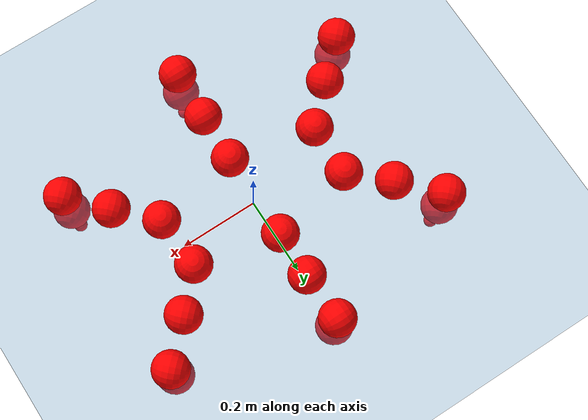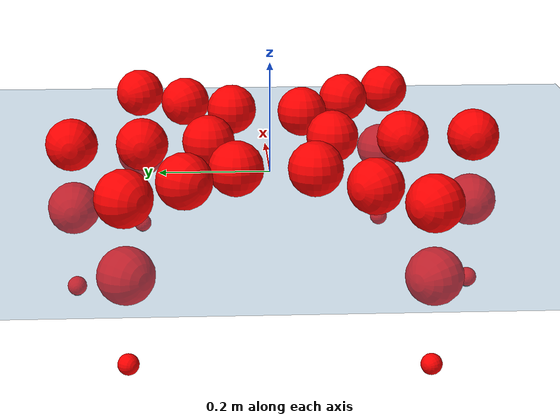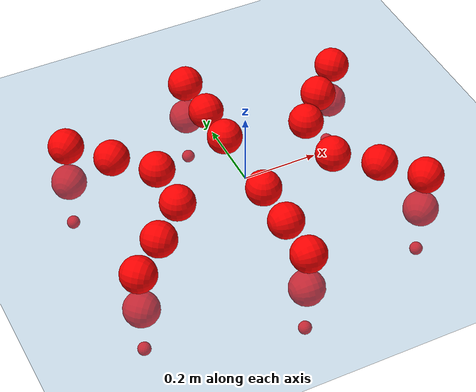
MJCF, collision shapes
<mujoco model="Golem">
  <compiler angle="radian" assetdir="assets" balanceinertia="true" inertiafromgeom="false"/>

  <option timestep="0.005" density="1.2" viscosity="2e-05"/>

  <size nkey="1"/>

  <visual>
    <quality shadowsize="8192"/>
    <map shadowclip="0.5"/>
  </visual>

  <default>
    <default class="/">
      <joint armature="0.01" damping="0.01" frictionloss="0.01"/>
      <geom contype="0" conaffinity="0" group="1" solref="-1000 -80"/>
      <site size="0.01 0.005 0.005" group="5"/>
      <general forcelimited="true" biastype="affine" gainprm="25" biasprm="0 -25 -0.5"/>
      <default class="visual">
        <geom type="mesh" group="2"/>
      </default>
      <default class="collision">
        <geom group="3"/>
      </default>
      <default class="foot">
        <geom size="0.01 0 0" condim="6" group="4" priority="1" solimp="0.015 1 0.01"/>
      </default>
      <default class="reward_collision_sphere">
        <geom group="5" rgba="1 0 0 1"/>
      </default>
    </default>
  </default>

  <asset>
    <texture type="skybox" colorspace="auto" name="//unnamed_texture_0" builtin="gradient" rgb1="0.95 0.95 0.95" rgb2="0.95 0.95 0.95" width="100" height="600"/>
    <texture type="2d" colorspace="auto" name="texplane" builtin="checker" rgb1="0.345 0.575 0.748" rgb2="0.345 0.575 0.748" markrgb="1 1 1" width="512" height="512"/>
    <material name="MatPlane" class="/" texture="texplane" texuniform="true" texrepeat="2 2" specular="0.9"/>
    <mesh name="body" class="/" file="body.stl" scale="0.001 0.001 0.001"/>
    <mesh name="coxa" class="/" file="coxa.stl" scale="0.001 0.001 0.001"/>
    <mesh name="femur" class="/" file="femur.stl" scale="0.001 0.001 0.001"/>
    <mesh name="tibia" class="/" file="tibia.stl" scale="0.001 0.001 0.001"/>
    <mesh name="tarsus" class="/" file="tarsus.stl" scale="0.001 0.001 0.001"/>
  </asset>

  <worldbody>
    <geom name="floor" class="/" size="100 100 0.125" type="plane" group="0" material="MatPlane"/>
    <light name="toplight_shadow" class="/" pos="0 0 5" dir="0.0990148 0.0990148 -0.990148" type="directional" ambient="0.04 0.04 0.04" diffuse="0.55 0.55 0.55" specular="0.12 0.12 0.12"/>
    <light name="toplight_fill" class="/" pos="0 0 5" dir="0.0990148 0.0990148 -0.990148" type="directional" castshadow="false" ambient="0.04 0.04 0.04" diffuse="0.3 0.3 0.3" specular="0.08 0.08 0.08"/>
    <body name="trunk" pos="-0.00419018 0.000167504 0.00065845" quat="1 0.000177486 -1.60819e-05 6.52851e-05">
      <inertial pos="0.00264229 0.00211157 -0.00476093" quat="0.999999 0.000677275 0.000833903 0.00123023" mass="6.26558" diaginertia="0.0545812 0.0229515 0.00830989"/>
      <joint name="//unnamed_joint_0" type="free"/>
      <geom name="//unnamed_geom_1" class="/" pos="0 0 0.0615308" quat="1 0 0 0" type="mesh" rgba="0.9 0.9 0.9 1" mesh="body"/>
      <site name="imu" class="/" pos="0.164232 -0.0148592 0.107859" size="0.0117409"/>
      <camera name="track" class="/" pos="0 -2.33489 0" quat="0.707107 0.707107 0 0" mode="trackcom"/>
      <camera name="ego_camera" class="/" pos="0.181141 0 0.0961419" quat="-0.5 -0.5 0.5 0.5"/>
      <body name="coxa_RR" pos="-0.246272 -0.0960619 0.0660046" quat="0.382777 -2.85125e-05 5.40117e-05 -0.923841">
        <inertial pos="0.00059179 0.00483823 -0.00145877" quat="0.999988 0.00212398 -0.00394208 0.0017861" mass="0.353691" diaginertia="0.0546833 0.0226321 0.00862591"/>
        <joint name="coxa_joint_RR" class="/" pos="0 0 0" axis="0.00255578 0.00535761 -0.999982" stiffness="0.0213192" range="-3.12625 3.12599" armature="0.0130477" damping="0" frictionloss="0.0115423"/>
        <geom name="//unnamed_geom_2" class="/" type="mesh" rgba="0.2 0.2 0.2 1" mesh="coxa"/>
        <geom name="//unnamed_geom_3" class="reward_collision_sphere" size="0.0469635" pos="-0.0418019 0 0"/>
        <body name="femur_RR" pos="0.086207 -0.000514017 -0.00491248" quat="0.500347 -0.499393 0.500189 0.500071">
          <inertial pos="-0.00114024 -0.00187653 -2.12874e-06" quat="0.999934 -0.0029734 -0.00865549 -0.00690428" mass="0.32176" diaginertia="0.052307 0.0221282 0.00756856"/>
          <joint name="femur_joint_RR" class="/" pos="0 0 0" axis="0.00651657 -0.0115234 -0.999912" stiffness="0.017623" range="-3.08219 3.15495" armature="0.0102801" damping="0" frictionloss="0.0103679"/>
          <geom name="//unnamed_geom_4" class="/" type="mesh" rgba="0.9 0.9 0.9 1" mesh="femur"/>
          <geom name="//unnamed_geom_5" class="reward_collision_sphere" size="0.0469635"/>
          <body name="tibia_RR" pos="0.00239652 -0.122252 -0.00493584" quat="-0.00159044 0.999997 0.00115121 -0.00127021">
            <inertial pos="0.00289576 -0.00248185 -0.000347628" quat="1 0.0002176 -0.000554591 -0.000739359" mass="0.316345" diaginertia="0.0512718 0.021004 0.0082199"/>
            <joint name="tibia_joint_RR" class="/" pos="0 0 0" axis="-0.00340235 -0.0134624 0.999904" range="-3.11123 3.13788" armature="0.0103351" damping="0.00454548" frictionloss="0.0118475"/>
            <geom name="//unnamed_geom_6" class="/" type="mesh" rgba="0.2 0.2 0.2 1" mesh="tibia"/>
            <geom name="//unnamed_geom_7" class="reward_collision_sphere" size="0.0469635"/>
            <body name="tarsus_RR" pos="0.120921 0.0018363 -0.00266557" quat="1 4.70993e-05 -0.00012487 -4.85034e-05">
              <inertial pos="0.0811629 0.000421401 0.00132003" quat="0.504576 0.489346 0.501986 0.503937" mass="0.31823" diaginertia="0.0539445 0.0219584 0.00801931"/>
              <joint name="tarsus_joint_RR" class="/" pos="0 0 0" axis="0.00255813 -0.00750487 0.999969" stiffness="0.0005266" range="-3.0833 3.13248" armature="0.0103008" damping="0.0477417" frictionloss="0.0110827"/>
              <geom name="//unnamed_geom_8" class="/" type="mesh" rgba="0.9 0.9 0.9 1" mesh="tarsus"/>
              <geom name="foot_1" class="foot" size="0.0115772" pos="0.15606 0 0" quat="0 -0.707107 0 0.707107"/>
              <geom name="//unnamed_geom_10" class="reward_collision_sphere" size="0.0469635"/>
              <geom name="//unnamed_geom_11" class="reward_collision_sphere" size="0.0176113" pos="0.14979 0 0"/>
              <site name="foot_1" class="foot" pos="0.15606 0 0" quat="0 -0.707107 0 0.707107" size="0.0117409"/>
            </body>
          </body>
        </body>
      </body>
      <body name="coxa_RM" pos="-0.000343495 -0.154344 0.0648852" quat="0.707114 4.18175e-06 3.76792e-05 -0.7071">
        <inertial pos="-0.00113799 0.000351826 -0.00121178" quat="0.999978 -0.00252284 0.00608494 0.000788512" mass="0.31938" diaginertia="0.0523062 0.0230365 0.00819663"/>
        <joint name="coxa_joint_RM" class="/" pos="0 0 0" axis="-0.0113907 -0.000368272 -0.999935" range="-3.17775 3.18427" armature="0.0122381" damping="0.0184642" frictionloss="0.0151625"/>
        <geom name="//unnamed_geom_12" class="/" type="mesh" rgba="0.2 0.2 0.2 1" mesh="coxa"/>
        <geom name="//unnamed_geom_13" class="reward_collision_sphere" size="0.0469635" pos="-0.0418019 0 0"/>
        <body name="femur_RM" pos="0.084955 -0.00244918 -0.000880532" quat="0.499351 -0.499484 0.501628 0.499533">
          <inertial pos="0.00247866 -0.00173824 -0.000169907" quat="0.999948 -0.00209109 -0.00895334 -0.00448863" mass="0.301485" diaginertia="0.0492117 0.0208991 0.00764673"/>
          <joint name="femur_joint_RM" class="/" pos="0 0 0" axis="-0.000403847 -0.000453617 -1" range="-3.10732 3.15238" armature="0.0110021" damping="0.00627841" frictionloss="0.0118794"/>
          <geom name="//unnamed_geom_14" class="/" type="mesh" rgba="0.9 0.9 0.9 1" mesh="femur"/>
          <geom name="//unnamed_geom_15" class="reward_collision_sphere" size="0.0469635"/>
          <body name="tibia_RM" pos="-0.0032953 -0.127086 -0.00468876" quat="-1.38958e-05 1 -0.00010283 0.000235415">
            <inertial pos="-0.000629714 0.00469974 0.000287723" quat="0.999877 0.000295551 0.0125641 0.00940519" mass="0.327103" diaginertia="0.0514412 0.0198387 0.00777556"/>
            <joint name="tibia_joint_RM" class="/" pos="0 0 0" axis="-0.00184875 0.00140766 0.999997" range="-3.07635 3.02379" armature="0.0120165" damping="0.0183098" frictionloss="0.0132179"/>
            <geom name="//unnamed_geom_16" class="/" type="mesh" rgba="0.2 0.2 0.2 1" mesh="tibia"/>
            <geom name="//unnamed_geom_17" class="reward_collision_sphere" size="0.0469635"/>
            <body name="tarsus_RM" pos="0.121374 -0.00166655 -0.00030052" quat="1 -0.00015557 -0.000313198 6.70758e-05">
              <inertial pos="0.0867215 0.000628133 -0.0013774" quat="0.491828 0.517593 0.488574 0.501496" mass="0.305095" diaginertia="0.0543297 0.0216046 0.008377"/>
              <joint name="tarsus_joint_RM" class="/" pos="0 0 0" axis="-0.00366781 -0.000287285 0.999993" range="-3.14399 3.08983" armature="0.0126826" damping="0" frictionloss="0.0121235"/>
              <geom name="//unnamed_geom_18" class="/" type="mesh" rgba="0.9 0.9 0.9 1" mesh="tarsus"/>
              <geom name="foot_2" class="foot" size="0.0127993" pos="0.15606 0 0" quat="0 -0.707107 0 0.707107"/>
              <geom name="//unnamed_geom_20" class="reward_collision_sphere" size="0.0469635"/>
              <geom name="//unnamed_geom_21" class="reward_collision_sphere" size="0.0176113" pos="0.14979 0 0"/>
              <site name="foot_2" class="foot" pos="0.15606 0 0" quat="0 -0.707107 0 0.707107" size="0.0117409"/>
            </body>
          </body>
        </body>
      </body>
      <body name="coxa_RF" pos="0.249393 -0.101444 0.0585648" quat="0.924282 -0.000719286 7.45395e-06 -0.381711">
        <inertial pos="-0.00210548 0.000599746 0.000561878" quat="1 3.05067e-05 0.000449996 -1.79243e-05" mass="0.331446" diaginertia="0.0525922 0.0228591 0.00827802"/>
        <joint name="coxa_joint_RF" class="/" pos="0 0 0" axis="-0.00165174 -0.00187172 -0.999997" stiffness="0.00358081" range="-3.12983 3.18841" armature="0.0103078" damping="0.0346785" frictionloss="0.0124818"/>
        <geom name="//unnamed_geom_22" class="/" type="mesh" rgba="0.2 0.2 0.2 1" mesh="coxa"/>
        <geom name="//unnamed_geom_23" class="reward_collision_sphere" size="0.0469635" pos="-0.0418019 0 0"/>
        <body name="femur_RF" pos="0.0824991 -0.000163959 0.00595771" quat="0.49977 -0.499698 0.500934 0.499597">
          <inertial pos="0.0016878 0.000299006 0.000838111" quat="0.99997 0.00023193 0.00278504 0.00715904" mass="0.319117" diaginertia="0.0525158 0.021369 0.00772963"/>
          <joint name="femur_joint_RF" class="/" pos="0 0 0" axis="-0.00151765 -0.000485648 -0.999999" range="-3.0497 3.18393" armature="0.0134092" damping="0.0113279" frictionloss="0.0107516"/>
          <geom name="//unnamed_geom_24" class="/" type="mesh" rgba="0.9 0.9 0.9 1" mesh="femur"/>
          <geom name="//unnamed_geom_25" class="reward_collision_sphere" size="0.0469635"/>
          <body name="tibia_RF" pos="0.00181664 -0.122553 -0.00543334" quat="6.16687e-05 1 0.000230577 -4.88626e-05">
            <inertial pos="0.00498427 -0.000801955 -0.00267506" quat="0.999998 0.00183358 -0.000841258 0.000337571" mass="0.318855" diaginertia="0.0540713 0.0223277 0.00859301"/>
            <joint name="tibia_joint_RF" class="/" pos="0 0 0" axis="-0.0188844 -0.0131734 0.999735" stiffness="0.00487418" range="-3.18913 3.23107" armature="0.010692" damping="0.0185473" frictionloss="0.0115959"/>
            <geom name="//unnamed_geom_26" class="/" type="mesh" rgba="0.2 0.2 0.2 1" mesh="tibia"/>
            <geom name="//unnamed_geom_27" class="reward_collision_sphere" size="0.0469635"/>
            <body name="tarsus_RF" pos="0.121888 -0.00400754 -0.00229809" quat="0.999998 -0.000501093 0.00187591 0.000278101">
              <inertial pos="0.0847926 0.00256482 -0.000134634" quat="0.499773 0.497805 0.502003 0.50041" mass="0.315806" diaginertia="0.0539683 0.0209383 0.0082161"/>
              <joint name="tarsus_joint_RF" class="/" pos="0 0 0" axis="-4.85313e-05 2.65641e-05 1" range="-3.1761 3.08987" armature="0.0117642" damping="0.00282095" frictionloss="0.0112075"/>
              <geom name="//unnamed_geom_28" class="/" type="mesh" rgba="0.9 0.9 0.9 1" mesh="tarsus"/>
              <geom name="foot_3" class="foot" size="0.0110567" pos="0.15606 0 0" quat="0 -0.707107 0 0.707107"/>
              <geom name="//unnamed_geom_30" class="reward_collision_sphere" size="0.0469635"/>
              <geom name="//unnamed_geom_31" class="reward_collision_sphere" size="0.0176113" pos="0.14979 0 0"/>
              <site name="foot_3" class="foot" pos="0.15606 0 0" quat="0 -0.707107 0 0.707107" size="0.0117409"/>
            </body>
          </body>
        </body>
      </body>
      <body name="coxa_LR" pos="-0.243374 0.0957087 0.0669785" quat="0.382393 0.000411995 -0.000388665 0.924">
        <inertial pos="0.0037507 0.000810022 0.0055045" quat="0.999732 0.0197308 -0.00625094 -0.0103802" mass="0.321895" diaginertia="0.0519663 0.0198683 0.00832452"/>
        <joint name="coxa_joint_LR" class="/" pos="0 0 0" axis="-0.0101125 -0.0165225 -0.999812" range="-3.18679 3.12461" armature="0.0115844" damping="0" frictionloss="0.0128937"/>
        <geom name="//unnamed_geom_32" class="/" type="mesh" rgba="0.2 0.2 0.2 1" mesh="coxa"/>
        <geom name="//unnamed_geom_33" class="reward_collision_sphere" size="0.0469635" pos="-0.0418019 0 0"/>
        <body name="femur_LR" pos="0.0814097 0.00216066 0.00478729" quat="0.500016 -0.499925 0.500324 0.499735">
          <inertial pos="-0.00179576 0.00153513 -0.00161913" quat="0.999997 -0.000434033 -0.00195163 -0.00163935" mass="0.324341" diaginertia="0.0520742 0.0211212 0.00806492"/>
          <joint name="femur_joint_LR" class="/" pos="0 0 0" axis="-0.000251544 0.000317249 1" stiffness="0.0038319" range="-3.0924 3.11393" armature="0.0131637" damping="0.0100378" frictionloss="0.0147194"/>
          <geom name="//unnamed_geom_34" class="/" type="mesh" rgba="0.9 0.9 0.9 1" mesh="femur"/>
          <geom name="//unnamed_geom_35" class="reward_collision_sphere" size="0.0469635"/>
          <body name="tibia_LR" pos="0.00111409 -0.128626 -0.00295436" quat="0.000291384 0.999998 0.000795812 0.0015246">
            <inertial pos="0.000788027 0.00108618 0.000435224" quat="0.999929 -0.00423381 -0.0110738 0.00125311" mass="0.336601" diaginertia="0.0537858 0.0212986 0.0081039"/>
            <joint name="tibia_joint_LR" class="/" pos="0 0 0" axis="-0.00134423 0.000754312 -0.999999" stiffness="0.0114575" range="-3.15562 3.17691" armature="0.0109409" damping="0" frictionloss="0.012566"/>
            <geom name="//unnamed_geom_36" class="/" type="mesh" rgba="0.2 0.2 0.2 1" mesh="tibia"/>
            <geom name="//unnamed_geom_37" class="reward_collision_sphere" size="0.0469635"/>
            <body name="tarsus_LR" pos="0.125313 0.00125602 -0.00172203" quat="0.999998 0.00130892 -0.000435073 0.00142468">
              <inertial pos="0.078537 0.000170894 0.00483919" quat="0.497916 0.500313 0.498546 0.503208" mass="0.333827" diaginertia="0.0534167 0.0226107 0.00829409"/>
              <joint name="tarsus_joint_LR" class="/" pos="0 0 0" axis="0.00790058 0.0139511 -0.999871" range="-3.09075 3.1881" armature="0.0127746" damping="0.00506888" frictionloss="0.0129464"/>
              <geom name="//unnamed_geom_38" class="/" type="mesh" rgba="0.9 0.9 0.9 1" mesh="tarsus"/>
              <geom name="foot_4" class="foot" size="0.0118705" pos="0.15606 0 0" quat="0.707107 0 -0.707107 0"/>
              <geom name="//unnamed_geom_40" class="reward_collision_sphere" size="0.0469635"/>
              <geom name="//unnamed_geom_41" class="reward_collision_sphere" size="0.0176113" pos="0.14979 0 0"/>
              <site name="foot_4" class="foot" pos="0.15606 0 0" quat="0.707107 0 -0.707107 0" size="0.0117409"/>
            </body>
          </body>
        </body>
      </body>
      <body name="coxa_LM" pos="-0.00186825 0.151968 0.0590557" quat="0.706747 0.000565159 -8.02111e-05 0.707467">
        <inertial pos="0.00282231 -0.00211081 0.00189395" quat="0.999999 -0.00121465 0.000978297 -0.000541088" mass="0.31586" diaginertia="0.0508162 0.0216993 0.008018"/>
        <joint name="coxa_joint_LM" class="/" pos="0 0 0" axis="0.00945859 -0.00704746 -0.99993" stiffness="0.00214079" range="-3.18662 3.16352" armature="0.012543" damping="0.00438706" frictionloss="0.0106262"/>
        <geom name="//unnamed_geom_42" class="/" type="mesh" rgba="0.2 0.2 0.2 1" mesh="coxa"/>
        <geom name="//unnamed_geom_43" class="reward_collision_sphere" size="0.0469635" pos="-0.0418019 0 0"/>
        <body name="femur_LM" pos="0.0769708 -0.00181414 -0.00455749" quat="0.49962 -0.499941 0.500026 0.500412">
          <inertial pos="0.00116474 0.00240352 -0.00526546" quat="0.999788 -0.0134067 0.00228546 -0.0154567" mass="0.33393" diaginertia="0.0546496 0.0239476 0.00866437"/>
          <joint name="femur_joint_LM" class="/" pos="0 0 0" axis="0.000829999 0.000121309 1" stiffness="0.00650618" range="-3.14468 3.17947" armature="0.0119104" damping="0.0177199" frictionloss="0.0112534"/>
          <geom name="//unnamed_geom_44" class="/" type="mesh" rgba="0.9 0.9 0.9 1" mesh="femur"/>
          <geom name="//unnamed_geom_45" class="reward_collision_sphere" size="0.0469635"/>
          <body name="tibia_LM" pos="-0.00122058 -0.125334 0.00288307" quat="-0.00178818 0.999997 -1.67723e-05 -0.0019284">
            <inertial pos="0.0019507 0.00522719 0.00216009" quat="0.999997 0.00207401 -0.000868772 0.000523762" mass="0.314785" diaginertia="0.0537702 0.020754 0.0084104"/>
            <joint name="tibia_joint_LM" class="/" pos="0 0 0" axis="-0.000143941 -0.000704053 -1" range="-3.15339 3.18279" armature="0.00994954" damping="0.034064" frictionloss="0.0113363"/>
            <geom name="//unnamed_geom_46" class="/" type="mesh" rgba="0.2 0.2 0.2 1" mesh="tibia"/>
            <geom name="//unnamed_geom_47" class="reward_collision_sphere" size="0.0469635"/>
            <body name="tarsus_LM" pos="0.117801 -0.000158147 -0.00021832" quat="0.999996 0.00126887 -0.00212215 -0.00150184">
              <inertial pos="0.0843166 -1.37806e-05 -0.000619305" quat="0.499722 0.500111 0.499847 0.50032" mass="0.341732" diaginertia="0.0546798 0.0223609 0.00860331"/>
              <joint name="tarsus_joint_LM" class="/" pos="0 0 0" axis="0.00168933 -0.00300922 -0.999994" stiffness="0.0232542" range="-3.24335 3.18625" armature="0.00981353" damping="0.0355185" frictionloss="0.0127546"/>
              <geom name="//unnamed_geom_48" class="/" type="mesh" rgba="0.9 0.9 0.9 1" mesh="tarsus"/>
              <geom name="foot_5" class="foot" size="0.012686" pos="0.15606 0 0" quat="0.707107 0 -0.707107 0"/>
              <geom name="//unnamed_geom_50" class="reward_collision_sphere" size="0.0469635"/>
              <geom name="//unnamed_geom_51" class="reward_collision_sphere" size="0.0176113" pos="0.14979 0 0"/>
              <site name="foot_5" class="foot" pos="0.15606 0 0" quat="0.707107 0 -0.707107 0" size="0.0117409"/>
            </body>
          </body>
        </body>
      </body>
      <body name="coxa_LF" pos="0.242827 0.0930817 0.0658159" quat="0.924098 0.000467766 -0.000265502 0.382155">
        <inertial pos="-0.000508736 0.00140031 -0.00171804" quat="0.999992 0.00386402 0.000481056 -0.000727418" mass="0.340355" diaginertia="0.0562215 0.0227082 0.00842955"/>
        <joint name="coxa_joint_LF" class="/" pos="0 0 0" axis="-0.00192383 0.00357513 -0.999992" stiffness="0.0312276" range="-3.16846 3.03628" armature="0.0100309" damping="0.0369544" frictionloss="0.0120869"/>
        <geom name="//unnamed_geom_52" class="/" type="mesh" rgba="0.2 0.2 0.2 1" mesh="coxa"/>
        <geom name="//unnamed_geom_53" class="reward_collision_sphere" size="0.0469635" pos="-0.0418019 0 0"/>
        <body name="femur_LF" pos="0.0808269 0.00407561 -0.00361261" quat="0.499391 -0.500719 0.498795 0.501091">
          <inertial pos="-0.00489462 -0.000399875 0.00114613" quat="0.999925 0.00267186 -0.00971383 0.00693778" mass="0.304377" diaginertia="0.0508773 0.0211528 0.0079971"/>
          <joint name="femur_joint_LF" class="/" pos="0 0 0" axis="-0.000324496 -0.00140844 0.999999" range="-3.1425 3.18954" armature="0.0100882" damping="0" frictionloss="0.0102829"/>
          <geom name="//unnamed_geom_54" class="/" type="mesh" rgba="0.9 0.9 0.9 1" mesh="femur"/>
          <geom name="//unnamed_geom_55" class="reward_collision_sphere" size="0.0469635"/>
          <body name="tibia_LF" pos="0.00242635 -0.130106 -0.000338538" quat="-0.000453981 1 -0.000650365 0.000212883">
            <inertial pos="-0.000426965 -0.00128405 0.00148441" quat="0.999928 0.00954633 -0.00208851 -0.00689333" mass="0.318656" diaginertia="0.0509588 0.0220849 0.00815872"/>
            <joint name="tibia_joint_LF" class="/" pos="0 0 0" axis="-0.00813432 0.000127652 -0.999967" stiffness="0.00255088" range="-3.14886 3.16807" armature="0.0118008" damping="0.0124242" frictionloss="0.0122737"/>
            <geom name="//unnamed_geom_56" class="/" type="mesh" rgba="0.2 0.2 0.2 1" mesh="tibia"/>
            <geom name="//unnamed_geom_57" class="reward_collision_sphere" size="0.0469635"/>
            <body name="tarsus_LF" pos="0.126058 -0.00193426 -0.00257584" quat="0.999998 0.00199435 -0.000404533 -0.000417477">
              <inertial pos="0.0856197 0.00179067 -0.0010653" quat="0.500129 0.498996 0.504273 0.496571" mass="0.336116" diaginertia="0.0550507 0.0217962 0.00856305"/>
              <joint name="tarsus_joint_LF" class="/" pos="0 0 0" axis="-0.00318514 -0.00427513 -0.999986" stiffness="0.00778315" range="-3.10713 3.1601" armature="0.011962" damping="0.0344906" frictionloss="0.0109289"/>
              <geom name="//unnamed_geom_58" class="/" type="mesh" rgba="0.9 0.9 0.9 1" mesh="tarsus"/>
              <geom name="foot_6" class="foot" size="0.0123834" pos="0.15606 0 0" quat="0.707107 0 -0.707107 0"/>
              <geom name="//unnamed_geom_60" class="reward_collision_sphere" size="0.0469635"/>
              <geom name="//unnamed_geom_61" class="reward_collision_sphere" size="0.0176113" pos="0.14979 0 0"/>
              <site name="foot_6" class="foot" pos="0.15606 0 0" quat="0.707107 0 -0.707107 0" size="0.0117409"/>
            </body>
          </body>
        </body>
      </body>
    </body>
  </worldbody>

  <contact>
    <pair class="/" geom1="floor" geom2="foot_1" name="//unnamed_contact_0"/>
    <pair class="/" geom1="floor" geom2="foot_2" name="//unnamed_contact_1"/>
    <pair class="/" geom1="floor" geom2="foot_3" name="//unnamed_contact_2"/>
    <pair class="/" geom1="floor" geom2="foot_4" name="//unnamed_contact_3"/>
    <pair class="/" geom1="floor" geom2="foot_5" name="//unnamed_contact_4"/>
    <pair class="/" geom1="floor" geom2="foot_6" name="//unnamed_contact_5"/>
  </contact>

  <actuator>
    <general name="coxa_joint_RR" class="/" joint="coxa_joint_RR" forcerange="-9.18101 9.18101" gainprm="28.2982" biasprm="0 -28.2982 -0.552789"/>
    <general name="femur_joint_RR" class="/" joint="femur_joint_RR" forcerange="-8.59664 8.59664" gainprm="28.2982" biasprm="0 -28.2982 -0.552789"/>
    <general name="tibia_joint_RR" class="/" joint="tibia_joint_RR" forcerange="-8.316 8.316" gainprm="28.2982" biasprm="0 -28.2982 -0.552789"/>
    <general name="tarsus_joint_RR" class="/" joint="tarsus_joint_RR" forcerange="-8.0891 8.0891" gainprm="28.2982" biasprm="0 -28.2982 -0.552789"/>
    <general name="coxa_joint_RM" class="/" joint="coxa_joint_RM" forcerange="-10.0563 10.0563" gainprm="28.2982" biasprm="0 -28.2982 -0.552789"/>
    <general name="femur_joint_RM" class="/" joint="femur_joint_RM" forcerange="-7.76521 7.76521" gainprm="28.2982" biasprm="0 -28.2982 -0.552789"/>
    <general name="tibia_joint_RM" class="/" joint="tibia_joint_RM" forcerange="-8.59346 8.59346" gainprm="28.2982" biasprm="0 -28.2982 -0.552789"/>
    <general name="tarsus_joint_RM" class="/" joint="tarsus_joint_RM" forcerange="-9.13156 9.13156" gainprm="28.2982" biasprm="0 -28.2982 -0.552789"/>
    <general name="coxa_joint_RF" class="/" joint="coxa_joint_RF" forcerange="-9.81131 9.81131" gainprm="28.2982" biasprm="0 -28.2982 -0.552789"/>
    <general name="femur_joint_RF" class="/" joint="femur_joint_RF" forcerange="-8.39777 8.39777" gainprm="28.2982" biasprm="0 -28.2982 -0.552789"/>
    <general name="tibia_joint_RF" class="/" joint="tibia_joint_RF" forcerange="-10.2176 10.2176" gainprm="28.2982" biasprm="0 -28.2982 -0.552789"/>
    <general name="tarsus_joint_RF" class="/" joint="tarsus_joint_RF" forcerange="-8.83195 8.83195" gainprm="28.2982" biasprm="0 -28.2982 -0.552789"/>
    <general name="coxa_joint_LR" class="/" joint="coxa_joint_LR" forcerange="-8.61303 8.61303" gainprm="28.2982" biasprm="0 -28.2982 -0.552789"/>
    <general name="femur_joint_LR" class="/" joint="femur_joint_LR" forcerange="-8.79974 8.79974" gainprm="28.2982" biasprm="0 -28.2982 -0.552789"/>
    <general name="tibia_joint_LR" class="/" joint="tibia_joint_LR" forcerange="-8.34425 8.34425" gainprm="28.2982" biasprm="0 -28.2982 -0.552789"/>
    <general name="tarsus_joint_LR" class="/" joint="tarsus_joint_LR" forcerange="-9.21951 9.21951" gainprm="28.2982" biasprm="0 -28.2982 -0.552789"/>
    <general name="coxa_joint_LM" class="/" joint="coxa_joint_LM" forcerange="-7.84676 7.84676" gainprm="28.2982" biasprm="0 -28.2982 -0.552789"/>
    <general name="femur_joint_LM" class="/" joint="femur_joint_LM" forcerange="-8.62781 8.62781" gainprm="28.2982" biasprm="0 -28.2982 -0.552789"/>
    <general name="tibia_joint_LM" class="/" joint="tibia_joint_LM" forcerange="-8.0514 8.0514" gainprm="28.2982" biasprm="0 -28.2982 -0.552789"/>
    <general name="tarsus_joint_LM" class="/" joint="tarsus_joint_LM" forcerange="-8.82775 8.82775" gainprm="28.2982" biasprm="0 -28.2982 -0.552789"/>
    <general name="coxa_joint_LF" class="/" joint="coxa_joint_LF" forcerange="-10.3129 10.3129" gainprm="28.2982" biasprm="0 -28.2982 -0.552789"/>
    <general name="femur_joint_LF" class="/" joint="femur_joint_LF" forcerange="-8.52559 8.52559" gainprm="28.2982" biasprm="0 -28.2982 -0.552789"/>
    <general name="tibia_joint_LF" class="/" joint="tibia_joint_LF" forcerange="-9.38214 9.38214" gainprm="28.2982" biasprm="0 -28.2982 -0.552789"/>
    <general name="tarsus_joint_LF" class="/" joint="tarsus_joint_LF" forcerange="-8.41168 8.41168" gainprm="28.2982" biasprm="0 -28.2982 -0.552789"/>
  </actuator>

  <sensor>
    <gyro site="imu" name="imu_angular_velocity"/>
    <velocimeter site="imu" name="imu_linear_velocity"/>
    <framelinvel objtype="site" objname="foot_1" name="foot_1_global_linear_velocity"/>
    <framelinvel objtype="site" objname="foot_2" name="foot_2_global_linear_velocity"/>
    <framelinvel objtype="site" objname="foot_3" name="foot_3_global_linear_velocity"/>
    <framelinvel objtype="site" objname="foot_4" name="foot_4_global_linear_velocity"/>
    <framelinvel objtype="site" objname="foot_5" name="foot_5_global_linear_velocity"/>
    <framelinvel objtype="site" objname="foot_6" name="foot_6_global_linear_velocity"/>
  </sensor>

  <keyframe>
    <key name="home" qpos="0 0 0.1457 1 0 0 0 0 0 0 0 0 0 0 0 0 0 0 0 0 0 0 0 0 0 0 0 0 0 0 0"/>
  </keyframe>
</mujoco>
